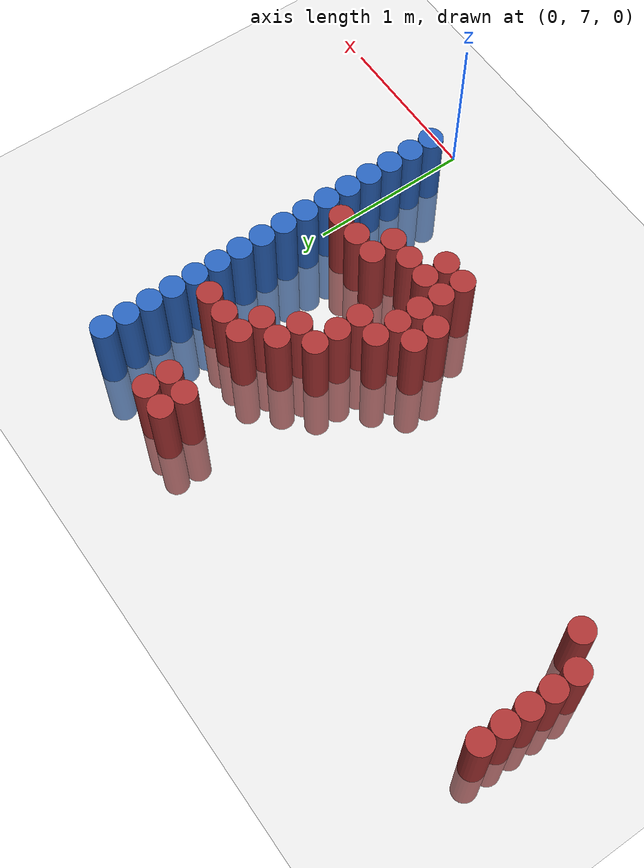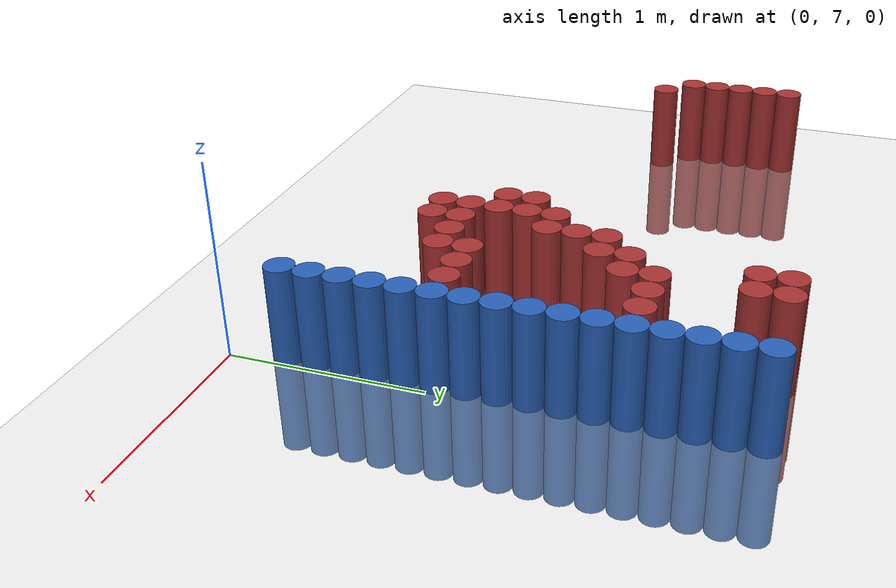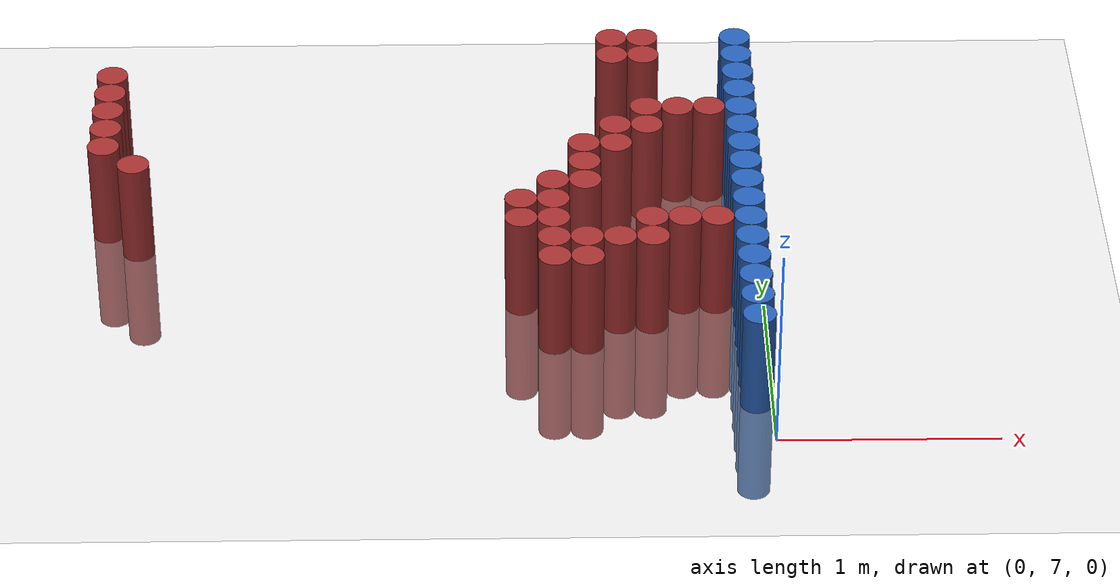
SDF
<sdf version="1.6">
 <world name="default">
  <model name="ground_plane">
   <static>1</static>
   <link name="link">
    <collision name="collision">
     <geometry><plane><normal>0 0 1</normal><size>100 100</size></plane></geometry>
     <surface><friction><ode><mu>100</mu><mu2>50</mu2></ode></friction></surface>
    </collision>
    <visual name="visual">
     <cast_shadows>0</cast_shadows>
     <geometry><plane><normal>0 0 1</normal><size>100 100</size></plane></geometry>
     <material>
      <script><uri>file://media/materials/scripts/gazebo.material</uri><name>Gazebo/Grey</name></script>
     </material>
    </visual>
   </link>
  </model>
  <model name="unit_cylinder_170">
   <static>1</static>
   <pose>-3.075000 8.625000 0.000000 0.000000 0.000000 0.000000</pose>
   <link name="link">
    <inertial>
     <mass>1</mass>
     <inertia><ixx>0.145833</ixx><ixy>0</ixy><ixz>0</ixz><iyy>0.145833</iyy><iyz>0</iyz><izz>0.125</izz></inertia>
    </inertial>
    <collision name="collision">
     <geometry><cylinder><radius>0.075000</radius><length>1</length></cylinder></geometry>
    </collision>
    <visual name="visual">
     <geometry><cylinder><radius>0.075000</radius><length>1</length></cylinder></geometry>
     <material>
      <ambient>0.648000 0.192000 0.192000 1</ambient>
      <diffuse>0.648000 0.192000 0.192000 1</diffuse>
     </material>
     <material>
      <script><name>Gazebo/Grey</name><uri>file://media/materials/scripts/gazebo.material</uri></script>
     </material>
    </visual>
   </link>
  </model>
  <model name="unit_cylinder_171">
   <static>1</static>
   <pose>-3.075000 8.775000 0.000000 0.000000 0.000000 0.000000</pose>
   <link name="link">
    <inertial>
     <mass>1</mass>
     <inertia><ixx>0.145833</ixx><ixy>0</ixy><ixz>0</ixz><iyy>0.145833</iyy><iyz>0</iyz><izz>0.125</izz></inertia>
    </inertial>
    <collision name="collision">
     <geometry><cylinder><radius>0.075000</radius><length>1</length></cylinder></geometry>
    </collision>
    <visual name="visual">
     <geometry><cylinder><radius>0.075000</radius><length>1</length></cylinder></geometry>
     <material>
      <ambient>0.648000 0.192000 0.192000 1</ambient>
      <diffuse>0.648000 0.192000 0.192000 1</diffuse>
     </material>
     <material>
      <script><name>Gazebo/Grey</name><uri>file://media/materials/scripts/gazebo.material</uri></script>
     </material>
    </visual>
   </link>
  </model>
  <model name="unit_cylinder_172">
   <static>1</static>
   <pose>-3.075000 8.925000 0.000000 0.000000 0.000000 0.000000</pose>
   <link name="link">
    <inertial>
     <mass>1</mass>
     <inertia><ixx>0.145833</ixx><ixy>0</ixy><ixz>0</ixz><iyy>0.145833</iyy><iyz>0</iyz><izz>0.125</izz></inertia>
    </inertial>
    <collision name="collision">
     <geometry><cylinder><radius>0.075000</radius><length>1</length></cylinder></geometry>
    </collision>
    <visual name="visual">
     <geometry><cylinder><radius>0.075000</radius><length>1</length></cylinder></geometry>
     <material>
      <ambient>0.648000 0.192000 0.192000 1</ambient>
      <diffuse>0.648000 0.192000 0.192000 1</diffuse>
     </material>
     <material>
      <script><name>Gazebo/Grey</name><uri>file://media/materials/scripts/gazebo.material</uri></script>
     </material>
    </visual>
   </link>
  </model>
  <model name="unit_cylinder_173">
   <static>1</static>
   <pose>-3.075000 9.075000 0.000000 0.000000 0.000000 0.000000</pose>
   <link name="link">
    <inertial>
     <mass>1</mass>
     <inertia><ixx>0.145833</ixx><ixy>0</ixy><ixz>0</ixz><iyy>0.145833</iyy><iyz>0</iyz><izz>0.125</izz></inertia>
    </inertial>
    <collision name="collision">
     <geometry><cylinder><radius>0.075000</radius><length>1</length></cylinder></geometry>
    </collision>
    <visual name="visual">
     <geometry><cylinder><radius>0.075000</radius><length>1</length></cylinder></geometry>
     <material>
      <ambient>0.648000 0.192000 0.192000 1</ambient>
      <diffuse>0.648000 0.192000 0.192000 1</diffuse>
     </material>
     <material>
      <script><name>Gazebo/Grey</name><uri>file://media/materials/scripts/gazebo.material</uri></script>
     </material>
    </visual>
   </link>
  </model>
  <model name="unit_cylinder_174">
   <static>1</static>
   <pose>-3.075000 9.225000 0.000000 0.000000 0.000000 0.000000</pose>
   <link name="link">
    <inertial>
     <mass>1</mass>
     <inertia><ixx>0.145833</ixx><ixy>0</ixy><ixz>0</ixz><iyy>0.145833</iyy><iyz>0</iyz><izz>0.125</izz></inertia>
    </inertial>
    <collision name="collision">
     <geometry><cylinder><radius>0.075000</radius><length>1</length></cylinder></geometry>
    </collision>
    <visual name="visual">
     <geometry><cylinder><radius>0.075000</radius><length>1</length></cylinder></geometry>
     <material>
      <ambient>0.648000 0.192000 0.192000 1</ambient>
      <diffuse>0.648000 0.192000 0.192000 1</diffuse>
     </material>
     <material>
      <script><name>Gazebo/Grey</name><uri>file://media/materials/scripts/gazebo.material</uri></script>
     </material>
    </visual>
   </link>
  </model>
  <model name="unit_cylinder_175">
   <static>1</static>
   <pose>-2.925000 8.475000 0.000000 0.000000 0.000000 0.000000</pose>
   <link name="link">
    <inertial>
     <mass>1</mass>
     <inertia><ixx>0.145833</ixx><ixy>0</ixy><ixz>0</ixz><iyy>0.145833</iyy><iyz>0</iyz><izz>0.125</izz></inertia>
    </inertial>
    <collision name="collision">
     <geometry><cylinder><radius>0.075000</radius><length>1</length></cylinder></geometry>
    </collision>
    <visual name="visual">
     <geometry><cylinder><radius>0.075000</radius><length>1</length></cylinder></geometry>
     <material>
      <ambient>0.648000 0.192000 0.192000 1</ambient>
      <diffuse>0.648000 0.192000 0.192000 1</diffuse>
     </material>
     <material>
      <script><name>Gazebo/Grey</name><uri>file://media/materials/scripts/gazebo.material</uri></script>
     </material>
    </visual>
   </link>
  </model>
  <model name="unit_cylinder_214">
   <static>1</static>
   <pose>-1.125000 8.025000 0.000000 0.000000 0.000000 0.000000</pose>
   <link name="link">
    <inertial>
     <mass>1</mass>
     <inertia><ixx>0.145833</ixx><ixy>0</ixy><ixz>0</ixz><iyy>0.145833</iyy><iyz>0</iyz><izz>0.125</izz></inertia>
    </inertial>
    <collision name="collision">
     <geometry><cylinder><radius>0.075000</radius><length>1</length></cylinder></geometry>
    </collision>
    <visual name="visual">
     <geometry><cylinder><radius>0.075000</radius><length>1</length></cylinder></geometry>
     <material>
      <ambient>0.648000 0.192000 0.192000 1</ambient>
      <diffuse>0.648000 0.192000 0.192000 1</diffuse>
     </material>
     <material>
      <script><name>Gazebo/Grey</name><uri>file://media/materials/scripts/gazebo.material</uri></script>
     </material>
    </visual>
   </link>
  </model>
  <model name="unit_cylinder_215">
   <static>1</static>
   <pose>-1.125000 8.175000 0.000000 0.000000 0.000000 0.000000</pose>
   <link name="link">
    <inertial>
     <mass>1</mass>
     <inertia><ixx>0.145833</ixx><ixy>0</ixy><ixz>0</ixz><iyy>0.145833</iyy><iyz>0</iyz><izz>0.125</izz></inertia>
    </inertial>
    <collision name="collision">
     <geometry><cylinder><radius>0.075000</radius><length>1</length></cylinder></geometry>
    </collision>
    <visual name="visual">
     <geometry><cylinder><radius>0.075000</radius><length>1</length></cylinder></geometry>
     <material>
      <ambient>0.648000 0.192000 0.192000 1</ambient>
      <diffuse>0.648000 0.192000 0.192000 1</diffuse>
     </material>
     <material>
      <script><name>Gazebo/Grey</name><uri>file://media/materials/scripts/gazebo.material</uri></script>
     </material>
    </visual>
   </link>
  </model>
  <model name="unit_cylinder_219">
   <static>1</static>
   <pose>-0.975000 7.725000 0.000000 0.000000 0.000000 0.000000</pose>
   <link name="link">
    <inertial>
     <mass>1</mass>
     <inertia><ixx>0.145833</ixx><ixy>0</ixy><ixz>0</ixz><iyy>0.145833</iyy><iyz>0</iyz><izz>0.125</izz></inertia>
    </inertial>
    <collision name="collision">
     <geometry><cylinder><radius>0.075000</radius><length>1</length></cylinder></geometry>
    </collision>
    <visual name="visual">
     <geometry><cylinder><radius>0.075000</radius><length>1</length></cylinder></geometry>
     <material>
      <ambient>0.648000 0.192000 0.192000 1</ambient>
      <diffuse>0.648000 0.192000 0.192000 1</diffuse>
     </material>
     <material>
      <script><name>Gazebo/Grey</name><uri>file://media/materials/scripts/gazebo.material</uri></script>
     </material>
    </visual>
   </link>
  </model>
  <model name="unit_cylinder_220">
   <static>1</static>
   <pose>-0.975000 7.875000 0.000000 0.000000 0.000000 0.000000</pose>
   <link name="link">
    <inertial>
     <mass>1</mass>
     <inertia><ixx>0.145833</ixx><ixy>0</ixy><ixz>0</ixz><iyy>0.145833</iyy><iyz>0</iyz><izz>0.125</izz></inertia>
    </inertial>
    <collision name="collision">
     <geometry><cylinder><radius>0.075000</radius><length>1</length></cylinder></geometry>
    </collision>
    <visual name="visual">
     <geometry><cylinder><radius>0.075000</radius><length>1</length></cylinder></geometry>
     <material>
      <ambient>0.648000 0.192000 0.192000 1</ambient>
      <diffuse>0.648000 0.192000 0.192000 1</diffuse>
     </material>
     <material>
      <script><name>Gazebo/Grey</name><uri>file://media/materials/scripts/gazebo.material</uri></script>
     </material>
    </visual>
   </link>
  </model>
  <model name="unit_cylinder_221">
   <static>1</static>
   <pose>-0.975000 8.025000 0.000000 0.000000 0.000000 0.000000</pose>
   <link name="link">
    <inertial>
     <mass>1</mass>
     <inertia><ixx>0.145833</ixx><ixy>0</ixy><ixz>0</ixz><iyy>0.145833</iyy><iyz>0</iyz><izz>0.125</izz></inertia>
    </inertial>
    <collision name="collision">
     <geometry><cylinder><radius>0.075000</radius><length>1</length></cylinder></geometry>
    </collision>
    <visual name="visual">
     <geometry><cylinder><radius>0.075000</radius><length>1</length></cylinder></geometry>
     <material>
      <ambient>0.648000 0.192000 0.192000 1</ambient>
      <diffuse>0.648000 0.192000 0.192000 1</diffuse>
     </material>
     <material>
      <script><name>Gazebo/Grey</name><uri>file://media/materials/scripts/gazebo.material</uri></script>
     </material>
    </visual>
   </link>
  </model>
  <model name="unit_cylinder_222">
   <static>1</static>
   <pose>-0.975000 8.175000 0.000000 0.000000 0.000000 0.000000</pose>
   <link name="link">
    <inertial>
     <mass>1</mass>
     <inertia><ixx>0.145833</ixx><ixy>0</ixy><ixz>0</ixz><iyy>0.145833</iyy><iyz>0</iyz><izz>0.125</izz></inertia>
    </inertial>
    <collision name="collision">
     <geometry><cylinder><radius>0.075000</radius><length>1</length></cylinder></geometry>
    </collision>
    <visual name="visual">
     <geometry><cylinder><radius>0.075000</radius><length>1</length></cylinder></geometry>
     <material>
      <ambient>0.648000 0.192000 0.192000 1</ambient>
      <diffuse>0.648000 0.192000 0.192000 1</diffuse>
     </material>
     <material>
      <script><name>Gazebo/Grey</name><uri>file://media/materials/scripts/gazebo.material</uri></script>
     </material>
    </visual>
   </link>
  </model>
  <model name="unit_cylinder_223">
   <static>1</static>
   <pose>-0.975000 8.325000 0.000000 0.000000 0.000000 0.000000</pose>
   <link name="link">
    <inertial>
     <mass>1</mass>
     <inertia><ixx>0.145833</ixx><ixy>0</ixy><ixz>0</ixz><iyy>0.145833</iyy><iyz>0</iyz><izz>0.125</izz></inertia>
    </inertial>
    <collision name="collision">
     <geometry><cylinder><radius>0.075000</radius><length>1</length></cylinder></geometry>
    </collision>
    <visual name="visual">
     <geometry><cylinder><radius>0.075000</radius><length>1</length></cylinder></geometry>
     <material>
      <ambient>0.648000 0.192000 0.192000 1</ambient>
      <diffuse>0.648000 0.192000 0.192000 1</diffuse>
     </material>
     <material>
      <script><name>Gazebo/Grey</name><uri>file://media/materials/scripts/gazebo.material</uri></script>
     </material>
    </visual>
   </link>
  </model>
  <model name="unit_cylinder_230">
   <static>1</static>
   <pose>-0.825000 7.725000 0.000000 0.000000 0.000000 0.000000</pose>
   <link name="link">
    <inertial>
     <mass>1</mass>
     <inertia><ixx>0.145833</ixx><ixy>0</ixy><ixz>0</ixz><iyy>0.145833</iyy><iyz>0</iyz><izz>0.125</izz></inertia>
    </inertial>
    <collision name="collision">
     <geometry><cylinder><radius>0.075000</radius><length>1</length></cylinder></geometry>
    </collision>
    <visual name="visual">
     <geometry><cylinder><radius>0.075000</radius><length>1</length></cylinder></geometry>
     <material>
      <ambient>0.648000 0.192000 0.192000 1</ambient>
      <diffuse>0.648000 0.192000 0.192000 1</diffuse>
     </material>
     <material>
      <script><name>Gazebo/Grey</name><uri>file://media/materials/scripts/gazebo.material</uri></script>
     </material>
    </visual>
   </link>
  </model>
  <model name="unit_cylinder_231">
   <static>1</static>
   <pose>-0.825000 7.875000 0.000000 0.000000 0.000000 0.000000</pose>
   <link name="link">
    <inertial>
     <mass>1</mass>
     <inertia><ixx>0.145833</ixx><ixy>0</ixy><ixz>0</ixz><iyy>0.145833</iyy><iyz>0</iyz><izz>0.125</izz></inertia>
    </inertial>
    <collision name="collision">
     <geometry><cylinder><radius>0.075000</radius><length>1</length></cylinder></geometry>
    </collision>
    <visual name="visual">
     <geometry><cylinder><radius>0.075000</radius><length>1</length></cylinder></geometry>
     <material>
      <ambient>0.648000 0.192000 0.192000 1</ambient>
      <diffuse>0.648000 0.192000 0.192000 1</diffuse>
     </material>
     <material>
      <script><name>Gazebo/Grey</name><uri>file://media/materials/scripts/gazebo.material</uri></script>
     </material>
    </visual>
   </link>
  </model>
  <model name="unit_cylinder_232">
   <static>1</static>
   <pose>-0.825000 8.325000 0.000000 0.000000 0.000000 0.000000</pose>
   <link name="link">
    <inertial>
     <mass>1</mass>
     <inertia><ixx>0.145833</ixx><ixy>0</ixy><ixz>0</ixz><iyy>0.145833</iyy><iyz>0</iyz><izz>0.125</izz></inertia>
    </inertial>
    <collision name="collision">
     <geometry><cylinder><radius>0.075000</radius><length>1</length></cylinder></geometry>
    </collision>
    <visual name="visual">
     <geometry><cylinder><radius>0.075000</radius><length>1</length></cylinder></geometry>
     <material>
      <ambient>0.648000 0.192000 0.192000 1</ambient>
      <diffuse>0.648000 0.192000 0.192000 1</diffuse>
     </material>
     <material>
      <script><name>Gazebo/Grey</name><uri>file://media/materials/scripts/gazebo.material</uri></script>
     </material>
    </visual>
   </link>
  </model>
  <model name="unit_cylinder_233">
   <static>1</static>
   <pose>-0.825000 8.475000 0.000000 0.000000 0.000000 0.000000</pose>
   <link name="link">
    <inertial>
     <mass>1</mass>
     <inertia><ixx>0.145833</ixx><ixy>0</ixy><ixz>0</ixz><iyy>0.145833</iyy><iyz>0</iyz><izz>0.125</izz></inertia>
    </inertial>
    <collision name="collision">
     <geometry><cylinder><radius>0.075000</radius><length>1</length></cylinder></geometry>
    </collision>
    <visual name="visual">
     <geometry><cylinder><radius>0.075000</radius><length>1</length></cylinder></geometry>
     <material>
      <ambient>0.648000 0.192000 0.192000 1</ambient>
      <diffuse>0.648000 0.192000 0.192000 1</diffuse>
     </material>
     <material>
      <script><name>Gazebo/Grey</name><uri>file://media/materials/scripts/gazebo.material</uri></script>
     </material>
    </visual>
   </link>
  </model>
  <model name="unit_cylinder_234">
   <static>1</static>
   <pose>-0.825000 8.625000 0.000000 0.000000 0.000000 0.000000</pose>
   <link name="link">
    <inertial>
     <mass>1</mass>
     <inertia><ixx>0.145833</ixx><ixy>0</ixy><ixz>0</ixz><iyy>0.145833</iyy><iyz>0</iyz><izz>0.125</izz></inertia>
    </inertial>
    <collision name="collision">
     <geometry><cylinder><radius>0.075000</radius><length>1</length></cylinder></geometry>
    </collision>
    <visual name="visual">
     <geometry><cylinder><radius>0.075000</radius><length>1</length></cylinder></geometry>
     <material>
      <ambient>0.648000 0.192000 0.192000 1</ambient>
      <diffuse>0.648000 0.192000 0.192000 1</diffuse>
     </material>
     <material>
      <script><name>Gazebo/Grey</name><uri>file://media/materials/scripts/gazebo.material</uri></script>
     </material>
    </visual>
   </link>
  </model>
  <model name="unit_cylinder_238">
   <static>1</static>
   <pose>-0.675000 7.875000 0.000000 0.000000 0.000000 0.000000</pose>
   <link name="link">
    <inertial>
     <mass>1</mass>
     <inertia><ixx>0.145833</ixx><ixy>0</ixy><ixz>0</ixz><iyy>0.145833</iyy><iyz>0</iyz><izz>0.125</izz></inertia>
    </inertial>
    <collision name="collision">
     <geometry><cylinder><radius>0.075000</radius><length>1</length></cylinder></geometry>
    </collision>
    <visual name="visual">
     <geometry><cylinder><radius>0.075000</radius><length>1</length></cylinder></geometry>
     <material>
      <ambient>0.648000 0.192000 0.192000 1</ambient>
      <diffuse>0.648000 0.192000 0.192000 1</diffuse>
     </material>
     <material>
      <script><name>Gazebo/Grey</name><uri>file://media/materials/scripts/gazebo.material</uri></script>
     </material>
    </visual>
   </link>
  </model>
  <model name="unit_cylinder_239">
   <static>1</static>
   <pose>-0.675000 8.625000 0.000000 0.000000 0.000000 0.000000</pose>
   <link name="link">
    <inertial>
     <mass>1</mass>
     <inertia><ixx>0.145833</ixx><ixy>0</ixy><ixz>0</ixz><iyy>0.145833</iyy><iyz>0</iyz><izz>0.125</izz></inertia>
    </inertial>
    <collision name="collision">
     <geometry><cylinder><radius>0.075000</radius><length>1</length></cylinder></geometry>
    </collision>
    <visual name="visual">
     <geometry><cylinder><radius>0.075000</radius><length>1</length></cylinder></geometry>
     <material>
      <ambient>0.648000 0.192000 0.192000 1</ambient>
      <diffuse>0.648000 0.192000 0.192000 1</diffuse>
     </material>
     <material>
      <script><name>Gazebo/Grey</name><uri>file://media/materials/scripts/gazebo.material</uri></script>
     </material>
    </visual>
   </link>
  </model>
  <model name="unit_cylinder_240">
   <static>1</static>
   <pose>-0.675000 8.775000 0.000000 0.000000 0.000000 0.000000</pose>
   <link name="link">
    <inertial>
     <mass>1</mass>
     <inertia><ixx>0.145833</ixx><ixy>0</ixy><ixz>0</ixz><iyy>0.145833</iyy><iyz>0</iyz><izz>0.125</izz></inertia>
    </inertial>
    <collision name="collision">
     <geometry><cylinder><radius>0.075000</radius><length>1</length></cylinder></geometry>
    </collision>
    <visual name="visual">
     <geometry><cylinder><radius>0.075000</radius><length>1</length></cylinder></geometry>
     <material>
      <ambient>0.648000 0.192000 0.192000 1</ambient>
      <diffuse>0.648000 0.192000 0.192000 1</diffuse>
     </material>
     <material>
      <script><name>Gazebo/Grey</name><uri>file://media/materials/scripts/gazebo.material</uri></script>
     </material>
    </visual>
   </link>
  </model>
  <model name="unit_cylinder_241">
   <static>1</static>
   <pose>-0.675000 9.375000 0.000000 0.000000 0.000000 0.000000</pose>
   <link name="link">
    <inertial>
     <mass>1</mass>
     <inertia><ixx>0.145833</ixx><ixy>0</ixy><ixz>0</ixz><iyy>0.145833</iyy><iyz>0</iyz><izz>0.125</izz></inertia>
    </inertial>
    <collision name="collision">
     <geometry><cylinder><radius>0.075000</radius><length>1</length></cylinder></geometry>
    </collision>
    <visual name="visual">
     <geometry><cylinder><radius>0.075000</radius><length>1</length></cylinder></geometry>
     <material>
      <ambient>0.648000 0.192000 0.192000 1</ambient>
      <diffuse>0.648000 0.192000 0.192000 1</diffuse>
     </material>
     <material>
      <script><name>Gazebo/Grey</name><uri>file://media/materials/scripts/gazebo.material</uri></script>
     </material>
    </visual>
   </link>
  </model>
  <model name="unit_cylinder_242">
   <static>1</static>
   <pose>-0.675000 9.525000 0.000000 0.000000 0.000000 0.000000</pose>
   <link name="link">
    <inertial>
     <mass>1</mass>
     <inertia><ixx>0.145833</ixx><ixy>0</ixy><ixz>0</ixz><iyy>0.145833</iyy><iyz>0</iyz><izz>0.125</izz></inertia>
    </inertial>
    <collision name="collision">
     <geometry><cylinder><radius>0.075000</radius><length>1</length></cylinder></geometry>
    </collision>
    <visual name="visual">
     <geometry><cylinder><radius>0.075000</radius><length>1</length></cylinder></geometry>
     <material>
      <ambient>0.648000 0.192000 0.192000 1</ambient>
      <diffuse>0.648000 0.192000 0.192000 1</diffuse>
     </material>
     <material>
      <script><name>Gazebo/Grey</name><uri>file://media/materials/scripts/gazebo.material</uri></script>
     </material>
    </visual>
   </link>
  </model>
  <model name="unit_cylinder_246">
   <static>1</static>
   <pose>-0.525000 7.875000 0.000000 0.000000 0.000000 0.000000</pose>
   <link name="link">
    <inertial>
     <mass>1</mass>
     <inertia><ixx>0.145833</ixx><ixy>0</ixy><ixz>0</ixz><iyy>0.145833</iyy><iyz>0</iyz><izz>0.125</izz></inertia>
    </inertial>
    <collision name="collision">
     <geometry><cylinder><radius>0.075000</radius><length>1</length></cylinder></geometry>
    </collision>
    <visual name="visual">
     <geometry><cylinder><radius>0.075000</radius><length>1</length></cylinder></geometry>
     <material>
      <ambient>0.648000 0.192000 0.192000 1</ambient>
      <diffuse>0.648000 0.192000 0.192000 1</diffuse>
     </material>
     <material>
      <script><name>Gazebo/Grey</name><uri>file://media/materials/scripts/gazebo.material</uri></script>
     </material>
    </visual>
   </link>
  </model>
  <model name="unit_cylinder_247">
   <static>1</static>
   <pose>-0.525000 8.025000 0.000000 0.000000 0.000000 0.000000</pose>
   <link name="link">
    <inertial>
     <mass>1</mass>
     <inertia><ixx>0.145833</ixx><ixy>0</ixy><ixz>0</ixz><iyy>0.145833</iyy><iyz>0</iyz><izz>0.125</izz></inertia>
    </inertial>
    <collision name="collision">
     <geometry><cylinder><radius>0.075000</radius><length>1</length></cylinder></geometry>
    </collision>
    <visual name="visual">
     <geometry><cylinder><radius>0.075000</radius><length>1</length></cylinder></geometry>
     <material>
      <ambient>0.648000 0.192000 0.192000 1</ambient>
      <diffuse>0.648000 0.192000 0.192000 1</diffuse>
     </material>
     <material>
      <script><name>Gazebo/Grey</name><uri>file://media/materials/scripts/gazebo.material</uri></script>
     </material>
    </visual>
   </link>
  </model>
  <model name="unit_cylinder_248">
   <static>1</static>
   <pose>-0.525000 8.775000 0.000000 0.000000 0.000000 0.000000</pose>
   <link name="link">
    <inertial>
     <mass>1</mass>
     <inertia><ixx>0.145833</ixx><ixy>0</ixy><ixz>0</ixz><iyy>0.145833</iyy><iyz>0</iyz><izz>0.125</izz></inertia>
    </inertial>
    <collision name="collision">
     <geometry><cylinder><radius>0.075000</radius><length>1</length></cylinder></geometry>
    </collision>
    <visual name="visual">
     <geometry><cylinder><radius>0.075000</radius><length>1</length></cylinder></geometry>
     <material>
      <ambient>0.648000 0.192000 0.192000 1</ambient>
      <diffuse>0.648000 0.192000 0.192000 1</diffuse>
     </material>
     <material>
      <script><name>Gazebo/Grey</name><uri>file://media/materials/scripts/gazebo.material</uri></script>
     </material>
    </visual>
   </link>
  </model>
  <model name="unit_cylinder_249">
   <static>1</static>
   <pose>-0.525000 8.925000 0.000000 0.000000 0.000000 0.000000</pose>
   <link name="link">
    <inertial>
     <mass>1</mass>
     <inertia><ixx>0.145833</ixx><ixy>0</ixy><ixz>0</ixz><iyy>0.145833</iyy><iyz>0</iyz><izz>0.125</izz></inertia>
    </inertial>
    <collision name="collision">
     <geometry><cylinder><radius>0.075000</radius><length>1</length></cylinder></geometry>
    </collision>
    <visual name="visual">
     <geometry><cylinder><radius>0.075000</radius><length>1</length></cylinder></geometry>
     <material>
      <ambient>0.648000 0.192000 0.192000 1</ambient>
      <diffuse>0.648000 0.192000 0.192000 1</diffuse>
     </material>
     <material>
      <script><name>Gazebo/Grey</name><uri>file://media/materials/scripts/gazebo.material</uri></script>
     </material>
    </visual>
   </link>
  </model>
  <model name="unit_cylinder_250">
   <static>1</static>
   <pose>-0.525000 9.375000 0.000000 0.000000 0.000000 0.000000</pose>
   <link name="link">
    <inertial>
     <mass>1</mass>
     <inertia><ixx>0.145833</ixx><ixy>0</ixy><ixz>0</ixz><iyy>0.145833</iyy><iyz>0</iyz><izz>0.125</izz></inertia>
    </inertial>
    <collision name="collision">
     <geometry><cylinder><radius>0.075000</radius><length>1</length></cylinder></geometry>
    </collision>
    <visual name="visual">
     <geometry><cylinder><radius>0.075000</radius><length>1</length></cylinder></geometry>
     <material>
      <ambient>0.648000 0.192000 0.192000 1</ambient>
      <diffuse>0.648000 0.192000 0.192000 1</diffuse>
     </material>
     <material>
      <script><name>Gazebo/Grey</name><uri>file://media/materials/scripts/gazebo.material</uri></script>
     </material>
    </visual>
   </link>
  </model>
  <model name="unit_cylinder_251">
   <static>1</static>
   <pose>-0.525000 9.525000 0.000000 0.000000 0.000000 0.000000</pose>
   <link name="link">
    <inertial>
     <mass>1</mass>
     <inertia><ixx>0.145833</ixx><ixy>0</ixy><ixz>0</ixz><iyy>0.145833</iyy><iyz>0</iyz><izz>0.125</izz></inertia>
    </inertial>
    <collision name="collision">
     <geometry><cylinder><radius>0.075000</radius><length>1</length></cylinder></geometry>
    </collision>
    <visual name="visual">
     <geometry><cylinder><radius>0.075000</radius><length>1</length></cylinder></geometry>
     <material>
      <ambient>0.648000 0.192000 0.192000 1</ambient>
      <diffuse>0.648000 0.192000 0.192000 1</diffuse>
     </material>
     <material>
      <script><name>Gazebo/Grey</name><uri>file://media/materials/scripts/gazebo.material</uri></script>
     </material>
    </visual>
   </link>
  </model>
  <model name="unit_cylinder_255">
   <static>1</static>
   <pose>-0.375000 8.025000 0.000000 0.000000 0.000000 0.000000</pose>
   <link name="link">
    <inertial>
     <mass>1</mass>
     <inertia><ixx>0.145833</ixx><ixy>0</ixy><ixz>0</ixz><iyy>0.145833</iyy><iyz>0</iyz><izz>0.125</izz></inertia>
    </inertial>
    <collision name="collision">
     <geometry><cylinder><radius>0.075000</radius><length>1</length></cylinder></geometry>
    </collision>
    <visual name="visual">
     <geometry><cylinder><radius>0.075000</radius><length>1</length></cylinder></geometry>
     <material>
      <ambient>0.648000 0.192000 0.192000 1</ambient>
      <diffuse>0.648000 0.192000 0.192000 1</diffuse>
     </material>
     <material>
      <script><name>Gazebo/Grey</name><uri>file://media/materials/scripts/gazebo.material</uri></script>
     </material>
    </visual>
   </link>
  </model>
  <model name="unit_cylinder_256">
   <static>1</static>
   <pose>-0.375000 8.925000 0.000000 0.000000 0.000000 0.000000</pose>
   <link name="link">
    <inertial>
     <mass>1</mass>
     <inertia><ixx>0.145833</ixx><ixy>0</ixy><ixz>0</ixz><iyy>0.145833</iyy><iyz>0</iyz><izz>0.125</izz></inertia>
    </inertial>
    <collision name="collision">
     <geometry><cylinder><radius>0.075000</radius><length>1</length></cylinder></geometry>
    </collision>
    <visual name="visual">
     <geometry><cylinder><radius>0.075000</radius><length>1</length></cylinder></geometry>
     <material>
      <ambient>0.648000 0.192000 0.192000 1</ambient>
      <diffuse>0.648000 0.192000 0.192000 1</diffuse>
     </material>
     <material>
      <script><name>Gazebo/Grey</name><uri>file://media/materials/scripts/gazebo.material</uri></script>
     </material>
    </visual>
   </link>
  </model>
  <model name="unit_cylinder_260">
   <static>1</static>
   <pose>-0.225000 8.025000 0.000000 0.000000 0.000000 0.000000</pose>
   <link name="link">
    <inertial>
     <mass>1</mass>
     <inertia><ixx>0.145833</ixx><ixy>0</ixy><ixz>0</ixz><iyy>0.145833</iyy><iyz>0</iyz><izz>0.125</izz></inertia>
    </inertial>
    <collision name="collision">
     <geometry><cylinder><radius>0.075000</radius><length>1</length></cylinder></geometry>
    </collision>
    <visual name="visual">
     <geometry><cylinder><radius>0.075000</radius><length>1</length></cylinder></geometry>
     <material>
      <ambient>0.648000 0.192000 0.192000 1</ambient>
      <diffuse>0.648000 0.192000 0.192000 1</diffuse>
     </material>
     <material>
      <script><name>Gazebo/Grey</name><uri>file://media/materials/scripts/gazebo.material</uri></script>
     </material>
    </visual>
   </link>
  </model>
  <model name="unit_cylinder_261">
   <static>1</static>
   <pose>-0.225000 8.925000 0.000000 0.000000 0.000000 0.000000</pose>
   <link name="link">
    <inertial>
     <mass>1</mass>
     <inertia><ixx>0.145833</ixx><ixy>0</ixy><ixz>0</ixz><iyy>0.145833</iyy><iyz>0</iyz><izz>0.125</izz></inertia>
    </inertial>
    <collision name="collision">
     <geometry><cylinder><radius>0.075000</radius><length>1</length></cylinder></geometry>
    </collision>
    <visual name="visual">
     <geometry><cylinder><radius>0.075000</radius><length>1</length></cylinder></geometry>
     <material>
      <ambient>0.648000 0.192000 0.192000 1</ambient>
      <diffuse>0.648000 0.192000 0.192000 1</diffuse>
     </material>
     <material>
      <script><name>Gazebo/Grey</name><uri>file://media/materials/scripts/gazebo.material</uri></script>
     </material>
    </visual>
   </link>
  </model>
  <model name="unit_cylinder_276">
   <static>1</static>
   <pose>-0.075000 7.275000 0.000000 0.000000 0.000000 0.000000</pose>
   <link name="link">
    <inertial>
     <mass>1</mass>
     <inertia><ixx>0.145833</ixx><ixy>0</ixy><ixz>0</ixz><iyy>0.145833</iyy><iyz>0</iyz><izz>0.125</izz></inertia>
    </inertial>
    <collision name="collision">
     <geometry><cylinder><radius>0.075000</radius><length>1</length></cylinder></geometry>
    </collision>
    <visual name="visual">
     <geometry><cylinder><radius>0.075000</radius><length>1</length></cylinder></geometry>
     <material>
      <ambient>0.152000 0.379000 0.720000 1</ambient>
      <diffuse>0.152000 0.379000 0.720000 1</diffuse>
     </material>
     <material>
      <script><name>Gazebo/Grey</name><uri>file://media/materials/scripts/gazebo.material</uri></script>
     </material>
    </visual>
   </link>
  </model>
  <model name="unit_cylinder_277">
   <static>1</static>
   <pose>-0.075000 7.425000 0.000000 0.000000 0.000000 0.000000</pose>
   <link name="link">
    <inertial>
     <mass>1</mass>
     <inertia><ixx>0.145833</ixx><ixy>0</ixy><ixz>0</ixz><iyy>0.145833</iyy><iyz>0</iyz><izz>0.125</izz></inertia>
    </inertial>
    <collision name="collision">
     <geometry><cylinder><radius>0.075000</radius><length>1</length></cylinder></geometry>
    </collision>
    <visual name="visual">
     <geometry><cylinder><radius>0.075000</radius><length>1</length></cylinder></geometry>
     <material>
      <ambient>0.152000 0.379000 0.720000 1</ambient>
      <diffuse>0.152000 0.379000 0.720000 1</diffuse>
     </material>
     <material>
      <script><name>Gazebo/Grey</name><uri>file://media/materials/scripts/gazebo.material</uri></script>
     </material>
    </visual>
   </link>
  </model>
  <model name="unit_cylinder_278">
   <static>1</static>
   <pose>-0.075000 7.575000 0.000000 0.000000 0.000000 0.000000</pose>
   <link name="link">
    <inertial>
     <mass>1</mass>
     <inertia><ixx>0.145833</ixx><ixy>0</ixy><ixz>0</ixz><iyy>0.145833</iyy><iyz>0</iyz><izz>0.125</izz></inertia>
    </inertial>
    <collision name="collision">
     <geometry><cylinder><radius>0.075000</radius><length>1</length></cylinder></geometry>
    </collision>
    <visual name="visual">
     <geometry><cylinder><radius>0.075000</radius><length>1</length></cylinder></geometry>
     <material>
      <ambient>0.152000 0.379000 0.720000 1</ambient>
      <diffuse>0.152000 0.379000 0.720000 1</diffuse>
     </material>
     <material>
      <script><name>Gazebo/Grey</name><uri>file://media/materials/scripts/gazebo.material</uri></script>
     </material>
    </visual>
   </link>
  </model>
  <model name="unit_cylinder_279">
   <static>1</static>
   <pose>-0.075000 7.725000 0.000000 0.000000 0.000000 0.000000</pose>
   <link name="link">
    <inertial>
     <mass>1</mass>
     <inertia><ixx>0.145833</ixx><ixy>0</ixy><ixz>0</ixz><iyy>0.145833</iyy><iyz>0</iyz><izz>0.125</izz></inertia>
    </inertial>
    <collision name="collision">
     <geometry><cylinder><radius>0.075000</radius><length>1</length></cylinder></geometry>
    </collision>
    <visual name="visual">
     <geometry><cylinder><radius>0.075000</radius><length>1</length></cylinder></geometry>
     <material>
      <ambient>0.152000 0.379000 0.720000 1</ambient>
      <diffuse>0.152000 0.379000 0.720000 1</diffuse>
     </material>
     <material>
      <script><name>Gazebo/Grey</name><uri>file://media/materials/scripts/gazebo.material</uri></script>
     </material>
    </visual>
   </link>
  </model>
  <model name="unit_cylinder_280">
   <static>1</static>
   <pose>-0.075000 7.875000 0.000000 0.000000 0.000000 0.000000</pose>
   <link name="link">
    <inertial>
     <mass>1</mass>
     <inertia><ixx>0.145833</ixx><ixy>0</ixy><ixz>0</ixz><iyy>0.145833</iyy><iyz>0</iyz><izz>0.125</izz></inertia>
    </inertial>
    <collision name="collision">
     <geometry><cylinder><radius>0.075000</radius><length>1</length></cylinder></geometry>
    </collision>
    <visual name="visual">
     <geometry><cylinder><radius>0.075000</radius><length>1</length></cylinder></geometry>
     <material>
      <ambient>0.152000 0.379000 0.720000 1</ambient>
      <diffuse>0.152000 0.379000 0.720000 1</diffuse>
     </material>
     <material>
      <script><name>Gazebo/Grey</name><uri>file://media/materials/scripts/gazebo.material</uri></script>
     </material>
    </visual>
   </link>
  </model>
  <model name="unit_cylinder_281">
   <static>1</static>
   <pose>-0.075000 8.025000 0.000000 0.000000 0.000000 0.000000</pose>
   <link name="link">
    <inertial>
     <mass>1</mass>
     <inertia><ixx>0.145833</ixx><ixy>0</ixy><ixz>0</ixz><iyy>0.145833</iyy><iyz>0</iyz><izz>0.125</izz></inertia>
    </inertial>
    <collision name="collision">
     <geometry><cylinder><radius>0.075000</radius><length>1</length></cylinder></geometry>
    </collision>
    <visual name="visual">
     <geometry><cylinder><radius>0.075000</radius><length>1</length></cylinder></geometry>
     <material>
      <ambient>0.152000 0.379000 0.720000 1</ambient>
      <diffuse>0.152000 0.379000 0.720000 1</diffuse>
     </material>
     <material>
      <script><name>Gazebo/Grey</name><uri>file://media/materials/scripts/gazebo.material</uri></script>
     </material>
    </visual>
   </link>
  </model>
  <model name="unit_cylinder_282">
   <static>1</static>
   <pose>-0.075000 8.175000 0.000000 0.000000 0.000000 0.000000</pose>
   <link name="link">
    <inertial>
     <mass>1</mass>
     <inertia><ixx>0.145833</ixx><ixy>0</ixy><ixz>0</ixz><iyy>0.145833</iyy><iyz>0</iyz><izz>0.125</izz></inertia>
    </inertial>
    <collision name="collision">
     <geometry><cylinder><radius>0.075000</radius><length>1</length></cylinder></geometry>
    </collision>
    <visual name="visual">
     <geometry><cylinder><radius>0.075000</radius><length>1</length></cylinder></geometry>
     <material>
      <ambient>0.152000 0.379000 0.720000 1</ambient>
      <diffuse>0.152000 0.379000 0.720000 1</diffuse>
     </material>
     <material>
      <script><name>Gazebo/Grey</name><uri>file://media/materials/scripts/gazebo.material</uri></script>
     </material>
    </visual>
   </link>
  </model>
  <model name="unit_cylinder_283">
   <static>1</static>
   <pose>-0.075000 8.325000 0.000000 0.000000 0.000000 0.000000</pose>
   <link name="link">
    <inertial>
     <mass>1</mass>
     <inertia><ixx>0.145833</ixx><ixy>0</ixy><ixz>0</ixz><iyy>0.145833</iyy><iyz>0</iyz><izz>0.125</izz></inertia>
    </inertial>
    <collision name="collision">
     <geometry><cylinder><radius>0.075000</radius><length>1</length></cylinder></geometry>
    </collision>
    <visual name="visual">
     <geometry><cylinder><radius>0.075000</radius><length>1</length></cylinder></geometry>
     <material>
      <ambient>0.152000 0.379000 0.720000 1</ambient>
      <diffuse>0.152000 0.379000 0.720000 1</diffuse>
     </material>
     <material>
      <script><name>Gazebo/Grey</name><uri>file://media/materials/scripts/gazebo.material</uri></script>
     </material>
    </visual>
   </link>
  </model>
  <model name="unit_cylinder_284">
   <static>1</static>
   <pose>-0.075000 8.475000 0.000000 0.000000 0.000000 0.000000</pose>
   <link name="link">
    <inertial>
     <mass>1</mass>
     <inertia><ixx>0.145833</ixx><ixy>0</ixy><ixz>0</ixz><iyy>0.145833</iyy><iyz>0</iyz><izz>0.125</izz></inertia>
    </inertial>
    <collision name="collision">
     <geometry><cylinder><radius>0.075000</radius><length>1</length></cylinder></geometry>
    </collision>
    <visual name="visual">
     <geometry><cylinder><radius>0.075000</radius><length>1</length></cylinder></geometry>
     <material>
      <ambient>0.152000 0.379000 0.720000 1</ambient>
      <diffuse>0.152000 0.379000 0.720000 1</diffuse>
     </material>
     <material>
      <script><name>Gazebo/Grey</name><uri>file://media/materials/scripts/gazebo.material</uri></script>
     </material>
    </visual>
   </link>
  </model>
  <model name="unit_cylinder_285">
   <static>1</static>
   <pose>-0.075000 8.625000 0.000000 0.000000 0.000000 0.000000</pose>
   <link name="link">
    <inertial>
     <mass>1</mass>
     <inertia><ixx>0.145833</ixx><ixy>0</ixy><ixz>0</ixz><iyy>0.145833</iyy><iyz>0</iyz><izz>0.125</izz></inertia>
    </inertial>
    <collision name="collision">
     <geometry><cylinder><radius>0.075000</radius><length>1</length></cylinder></geometry>
    </collision>
    <visual name="visual">
     <geometry><cylinder><radius>0.075000</radius><length>1</length></cylinder></geometry>
     <material>
      <ambient>0.152000 0.379000 0.720000 1</ambient>
      <diffuse>0.152000 0.379000 0.720000 1</diffuse>
     </material>
     <material>
      <script><name>Gazebo/Grey</name><uri>file://media/materials/scripts/gazebo.material</uri></script>
     </material>
    </visual>
   </link>
  </model>
  <model name="unit_cylinder_286">
   <static>1</static>
   <pose>-0.075000 8.775000 0.000000 0.000000 0.000000 0.000000</pose>
   <link name="link">
    <inertial>
     <mass>1</mass>
     <inertia><ixx>0.145833</ixx><ixy>0</ixy><ixz>0</ixz><iyy>0.145833</iyy><iyz>0</iyz><izz>0.125</izz></inertia>
    </inertial>
    <collision name="collision">
     <geometry><cylinder><radius>0.075000</radius><length>1</length></cylinder></geometry>
    </collision>
    <visual name="visual">
     <geometry><cylinder><radius>0.075000</radius><length>1</length></cylinder></geometry>
     <material>
      <ambient>0.152000 0.379000 0.720000 1</ambient>
      <diffuse>0.152000 0.379000 0.720000 1</diffuse>
     </material>
     <material>
      <script><name>Gazebo/Grey</name><uri>file://media/materials/scripts/gazebo.material</uri></script>
     </material>
    </visual>
   </link>
  </model>
  <model name="unit_cylinder_287">
   <static>1</static>
   <pose>-0.075000 8.925000 0.000000 0.000000 0.000000 0.000000</pose>
   <link name="link">
    <inertial>
     <mass>1</mass>
     <inertia><ixx>0.145833</ixx><ixy>0</ixy><ixz>0</ixz><iyy>0.145833</iyy><iyz>0</iyz><izz>0.125</izz></inertia>
    </inertial>
    <collision name="collision">
     <geometry><cylinder><radius>0.075000</radius><length>1</length></cylinder></geometry>
    </collision>
    <visual name="visual">
     <geometry><cylinder><radius>0.075000</radius><length>1</length></cylinder></geometry>
     <material>
      <ambient>0.152000 0.379000 0.720000 1</ambient>
      <diffuse>0.152000 0.379000 0.720000 1</diffuse>
     </material>
     <material>
      <script><name>Gazebo/Grey</name><uri>file://media/materials/scripts/gazebo.material</uri></script>
     </material>
    </visual>
   </link>
  </model>
  <model name="unit_cylinder_288">
   <static>1</static>
   <pose>-0.075000 9.075000 0.000000 0.000000 0.000000 0.000000</pose>
   <link name="link">
    <inertial>
     <mass>1</mass>
     <inertia><ixx>0.145833</ixx><ixy>0</ixy><ixz>0</ixz><iyy>0.145833</iyy><iyz>0</iyz><izz>0.125</izz></inertia>
    </inertial>
    <collision name="collision">
     <geometry><cylinder><radius>0.075000</radius><length>1</length></cylinder></geometry>
    </collision>
    <visual name="visual">
     <geometry><cylinder><radius>0.075000</radius><length>1</length></cylinder></geometry>
     <material>
      <ambient>0.152000 0.379000 0.720000 1</ambient>
      <diffuse>0.152000 0.379000 0.720000 1</diffuse>
     </material>
     <material>
      <script><name>Gazebo/Grey</name><uri>file://media/materials/scripts/gazebo.material</uri></script>
     </material>
    </visual>
   </link>
  </model>
  <model name="unit_cylinder_289">
   <static>1</static>
   <pose>-0.075000 9.225000 0.000000 0.000000 0.000000 0.000000</pose>
   <link name="link">
    <inertial>
     <mass>1</mass>
     <inertia><ixx>0.145833</ixx><ixy>0</ixy><ixz>0</ixz><iyy>0.145833</iyy><iyz>0</iyz><izz>0.125</izz></inertia>
    </inertial>
    <collision name="collision">
     <geometry><cylinder><radius>0.075000</radius><length>1</length></cylinder></geometry>
    </collision>
    <visual name="visual">
     <geometry><cylinder><radius>0.075000</radius><length>1</length></cylinder></geometry>
     <material>
      <ambient>0.152000 0.379000 0.720000 1</ambient>
      <diffuse>0.152000 0.379000 0.720000 1</diffuse>
     </material>
     <material>
      <script><name>Gazebo/Grey</name><uri>file://media/materials/scripts/gazebo.material</uri></script>
     </material>
    </visual>
   </link>
  </model>
  <model name="unit_cylinder_290">
   <static>1</static>
   <pose>-0.075000 9.375000 0.000000 0.000000 0.000000 0.000000</pose>
   <link name="link">
    <inertial>
     <mass>1</mass>
     <inertia><ixx>0.145833</ixx><ixy>0</ixy><ixz>0</ixz><iyy>0.145833</iyy><iyz>0</iyz><izz>0.125</izz></inertia>
    </inertial>
    <collision name="collision">
     <geometry><cylinder><radius>0.075000</radius><length>1</length></cylinder></geometry>
    </collision>
    <visual name="visual">
     <geometry><cylinder><radius>0.075000</radius><length>1</length></cylinder></geometry>
     <material>
      <ambient>0.152000 0.379000 0.720000 1</ambient>
      <diffuse>0.152000 0.379000 0.720000 1</diffuse>
     </material>
     <material>
      <script><name>Gazebo/Grey</name><uri>file://media/materials/scripts/gazebo.material</uri></script>
     </material>
    </visual>
   </link>
  </model>
  <model name="unit_cylinder_291">
   <static>1</static>
   <pose>-0.075000 9.525000 0.000000 0.000000 0.000000 0.000000</pose>
   <link name="link">
    <inertial>
     <mass>1</mass>
     <inertia><ixx>0.145833</ixx><ixy>0</ixy><ixz>0</ixz><iyy>0.145833</iyy><iyz>0</iyz><izz>0.125</izz></inertia>
    </inertial>
    <collision name="collision">
     <geometry><cylinder><radius>0.075000</radius><length>1</length></cylinder></geometry>
    </collision>
    <visual name="visual">
     <geometry><cylinder><radius>0.075000</radius><length>1</length></cylinder></geometry>
     <material>
      <ambient>0.152000 0.379000 0.720000 1</ambient>
      <diffuse>0.152000 0.379000 0.720000 1</diffuse>
     </material>
     <material>
      <script><name>Gazebo/Grey</name><uri>file://media/materials/scripts/gazebo.material</uri></script>
     </material>
    </visual>
   </link>
  </model>
 </world>
</sdf>
